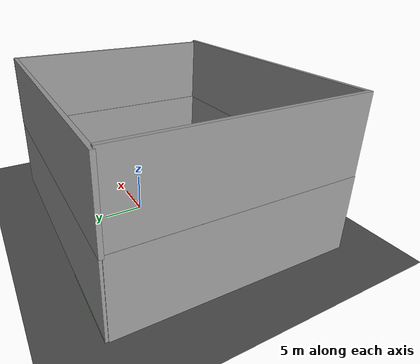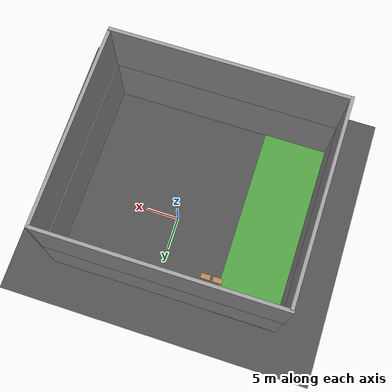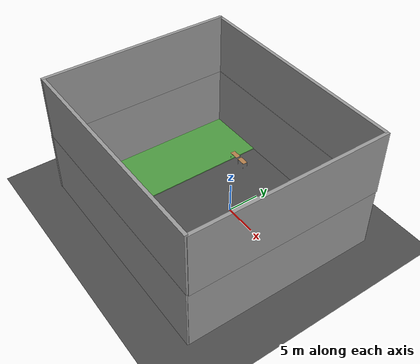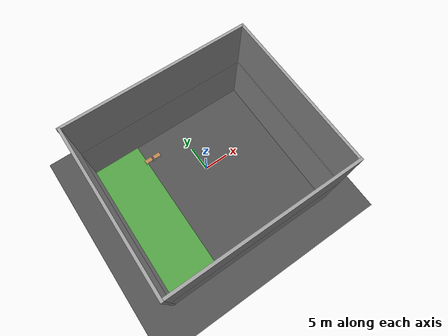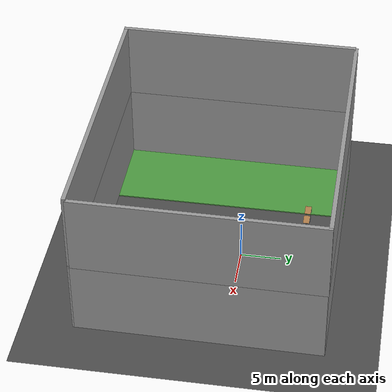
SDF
<sdf version="1.6">
 <world name="default">
  <model name="ground_plane">
   <static>1</static>
   <link name="link">
    <collision name="collision">
     <geometry><plane><normal>0 0 1</normal><size>40000 40000</size></plane></geometry>
     <surface>
      <contact><collide_bitmask>65535</collide_bitmask></contact>
      <friction><ode><mu>100</mu><mu2>50</mu2></ode></friction>
     </surface>
    </collision>
    <visual name="visual">
     <cast_shadows>0</cast_shadows>
     <geometry><plane><normal>0 0 1</normal><size>50 50</size></plane></geometry>
     <material>
      <script><uri>file://media/materials/scripts/gazebo.material</uri><name>Gazebo/Road</name></script>
     </material>
    </visual>
   </link>
  </model>
  <model name="grass_plane">
   <link name="link">
    <inertial>
     <mass>1</mass>
     <inertia><ixx>1</ixx><ixy>0</ixy><ixz>0</ixz><iyy>1</iyy><iyz>0</iyz><izz>1</izz></inertia>
    </inertial>
    <visual name="visual">
     <cast_shadows>0</cast_shadows>
     <geometry><box><size>10 30 0.2</size></box></geometry>
     <material>
      <script><uri>file://media/materials/scripts/gazebo.material</uri><name>Gazebo/Grass</name></script>
     </material>
    </visual>
    <collision name="collision">
     <geometry><box><size>10 30 0.2</size></box></geometry>
     <surface>
      <friction>
       <ode><mu>1</mu><mu2>1</mu2><fdir1>0 0 0</fdir1><slip1>0</slip1><slip2>0</slip2></ode>
       <torsional>
        <coefficient>1</coefficient>
        <patch_radius>0</patch_radius>
        <surface_radius>0</surface_radius>
        <use_patch_radius>1</use_patch_radius>
        <ode><slip>0</slip></ode>
       </torsional>
      </friction>
      <bounce><restitution_coefficient>0</restitution_coefficient><threshold>1e+06</threshold></bounce>
      <contact>
       <collide_without_contact>0</collide_without_contact>
       <collide_without_contact_bitmask>1</collide_without_contact_bitmask>
       <collide_bitmask>1</collide_bitmask>
       <ode>
        <soft_cfm>0</soft_cfm>
        <soft_erp>0.2</soft_erp>
        <kp>1e+13</kp>
        <kd>1</kd>
        <max_vel>0.01</max_vel>
        <min_depth>0</min_depth>
       </ode>
       <bullet>
        <split_impulse>1</split_impulse>
        <split_impulse_penetration_threshold>-0.01</split_impulse_penetration_threshold>
        <soft_cfm>0</soft_cfm>
        <soft_erp>0.2</soft_erp>
        <kp>1e+13</kp>
        <kd>1</kd>
       </bullet>
      </contact>
     </surface>
    </collision>
   </link>
   <static>1</static>
   <pose>-14.0993 -2.85316 0 0 -0 0</pose>
  </model>
  <model name="wall1">
   <link name="link">
    <enable_wind>1</enable_wind>
    <inertial>
     <mass>1</mass>
     <inertia><ixx>1</ixx><ixy>0</ixy><ixz>0</ixz><iyy>1</iyy><iyz>0</iyz><izz>1</izz></inertia>
    </inertial>
    <visual name="visual">
     <cast_shadows>0</cast_shadows>
     <geometry><box><size>35 0.5 10</size></box></geometry>
     <material>
      <script>
       <uri>model://grey_wall/materials/scripts</uri>
       <uri>model://grey_wall/materials/textures</uri>
       <name>vrc/grey_wall</name>
      </script>
      <shader type="pixel"><normal_map>__default__</normal_map></shader>
      <ambient>1 1 1 1</ambient>
      <diffuse>1 1 1 1</diffuse>
      <specular>0 0 0 1</specular>
      <emissive>0 0 0 1</emissive>
     </material>
    </visual>
    <collision name="collision">
     <geometry><box><size>35 0.5 10</size></box></geometry>
     <surface>
      <friction>
       <ode><mu>1</mu><mu2>1</mu2><fdir1>0 0 0</fdir1><slip1>0</slip1><slip2>0</slip2></ode>
       <torsional>
        <coefficient>1</coefficient>
        <patch_radius>0</patch_radius>
        <surface_radius>0</surface_radius>
        <use_patch_radius>1</use_patch_radius>
        <ode><slip>0</slip></ode>
       </torsional>
      </friction>
      <bounce><restitution_coefficient>0</restitution_coefficient><threshold>1e+06</threshold></bounce>
      <contact>
       <collide_without_contact>0</collide_without_contact>
       <collide_without_contact_bitmask>1</collide_without_contact_bitmask>
       <collide_bitmask>1</collide_bitmask>
       <ode>
        <soft_cfm>0</soft_cfm>
        <soft_erp>0.2</soft_erp>
        <kp>1e+13</kp>
        <kd>1</kd>
        <max_vel>0.01</max_vel>
        <min_depth>0</min_depth>
       </ode>
       <bullet>
        <split_impulse>1</split_impulse>
        <split_impulse_penetration_threshold>-0.01</split_impulse_penetration_threshold>
        <soft_cfm>0</soft_cfm>
        <soft_erp>0.2</soft_erp>
        <kp>1e+13</kp>
        <kd>1</kd>
       </bullet>
      </contact>
     </surface>
    </collision>
   </link>
   <static>1</static>
   <pose>-1.89732 -17.9183 5 0 -0 0</pose>
  </model>
  <model name="wall2">
   <link name="link">
    <enable_wind>1</enable_wind>
    <inertial>
     <mass>1</mass>
     <inertia><ixx>1</ixx><ixy>0</ixy><ixz>0</ixz><iyy>1</iyy><iyz>0</iyz><izz>1</izz></inertia>
    </inertial>
    <visual name="visual">
     <cast_shadows>0</cast_shadows>
     <geometry><box><size>30 0.5 10</size></box></geometry>
     <material>
      <script>
       <uri>model://grey_wall/materials/scripts</uri>
       <uri>model://grey_wall/materials/textures</uri>
       <name>vrc/grey_wall</name>
      </script>
      <shader type="pixel"><normal_map>__default__</normal_map></shader>
      <ambient>1 1 1 1</ambient>
      <diffuse>1 1 1 1</diffuse>
      <specular>0 0 0 1</specular>
      <emissive>0 0 0 1</emissive>
     </material>
    </visual>
    <collision name="collision">
     <geometry><box><size>30 0.5 10</size></box></geometry>
     <surface>
      <friction>
       <ode><mu>1</mu><mu2>1</mu2><fdir1>0 0 0</fdir1><slip1>0</slip1><slip2>0</slip2></ode>
       <torsional>
        <coefficient>1</coefficient>
        <patch_radius>0</patch_radius>
        <surface_radius>0</surface_radius>
        <use_patch_radius>1</use_patch_radius>
        <ode><slip>0</slip></ode>
       </torsional>
      </friction>
      <bounce><restitution_coefficient>0</restitution_coefficient><threshold>1e+06</threshold></bounce>
      <contact>
       <collide_without_contact>0</collide_without_contact>
       <collide_without_contact_bitmask>1</collide_without_contact_bitmask>
       <collide_bitmask>1</collide_bitmask>
       <ode>
        <soft_cfm>0</soft_cfm>
        <soft_erp>0.2</soft_erp>
        <kp>1e+13</kp>
        <kd>1</kd>
        <max_vel>0.01</max_vel>
        <min_depth>0</min_depth>
       </ode>
       <bullet>
        <split_impulse>1</split_impulse>
        <split_impulse_penetration_threshold>-0.01</split_impulse_penetration_threshold>
        <soft_cfm>0</soft_cfm>
        <soft_erp>0.2</soft_erp>
        <kp>1e+13</kp>
        <kd>1</kd>
       </bullet>
      </contact>
     </surface>
    </collision>
   </link>
   <static>1</static>
   <pose>15.5152 -2.93939 5 0 -0 1.56334</pose>
  </model>
  <model name="wall2_clone">
   <link name="link">
    <enable_wind>1</enable_wind>
    <inertial>
     <mass>1</mass>
     <inertia><ixx>1</ixx><ixy>0</ixy><ixz>0</ixz><iyy>1</iyy><iyz>0</iyz><izz>1</izz></inertia>
    </inertial>
    <visual name="visual">
     <cast_shadows>0</cast_shadows>
     <geometry><box><size>30 0.5 10</size></box></geometry>
     <material>
      <script>
       <uri>model://grey_wall/materials/scripts</uri>
       <uri>model://grey_wall/materials/textures</uri>
       <name>vrc/grey_wall</name>
      </script>
      <shader type="pixel"><normal_map>__default__</normal_map></shader>
      <ambient>1 1 1 1</ambient>
      <diffuse>1 1 1 1</diffuse>
      <specular>0 0 0 1</specular>
      <emissive>0 0 0 1</emissive>
     </material>
    </visual>
    <collision name="collision">
     <geometry><box><size>30 0.5 10</size></box></geometry>
     <surface>
      <friction>
       <ode><mu>1</mu><mu2>1</mu2><fdir1>0 0 0</fdir1><slip1>0</slip1><slip2>0</slip2></ode>
       <torsional>
        <coefficient>1</coefficient>
        <patch_radius>0</patch_radius>
        <surface_radius>0</surface_radius>
        <use_patch_radius>1</use_patch_radius>
        <ode><slip>0</slip></ode>
       </torsional>
      </friction>
      <bounce><restitution_coefficient>0</restitution_coefficient><threshold>1e+06</threshold></bounce>
      <contact>
       <collide_without_contact>0</collide_without_contact>
       <collide_without_contact_bitmask>1</collide_without_contact_bitmask>
       <collide_bitmask>1</collide_bitmask>
       <ode>
        <soft_cfm>0</soft_cfm>
        <soft_erp>0.2</soft_erp>
        <kp>1e+13</kp>
        <kd>1</kd>
        <max_vel>0.01</max_vel>
        <min_depth>0</min_depth>
       </ode>
       <bullet>
        <split_impulse>1</split_impulse>
        <split_impulse_penetration_threshold>-0.01</split_impulse_penetration_threshold>
        <soft_cfm>0</soft_cfm>
        <soft_erp>0.2</soft_erp>
        <kp>1e+13</kp>
        <kd>1</kd>
       </bullet>
      </contact>
     </surface>
    </collision>
   </link>
   <static>1</static>
   <pose>-19.1022 -3.20511 5 0 -0 1.56334</pose>
  </model>
  <model name="wall1_clone">
   <link name="link">
    <enable_wind>1</enable_wind>
    <inertial>
     <mass>1</mass>
     <inertia><ixx>1</ixx><ixy>0</ixy><ixz>0</ixz><iyy>1</iyy><iyz>0</iyz><izz>1</izz></inertia>
    </inertial>
    <visual name="visual">
     <cast_shadows>0</cast_shadows>
     <geometry><box><size>35 0.5 10</size></box></geometry>
     <material>
      <script>
       <uri>model://grey_wall/materials/scripts</uri>
       <uri>model://grey_wall/materials/textures</uri>
       <name>vrc/grey_wall</name>
      </script>
      <shader type="pixel"><normal_map>__default__</normal_map></shader>
      <ambient>1 1 1 1</ambient>
      <diffuse>1 1 1 1</diffuse>
      <specular>0 0 0 1</specular>
      <emissive>0 0 0 1</emissive>
     </material>
    </visual>
    <collision name="collision">
     <geometry><box><size>35 0.5 10</size></box></geometry>
     <surface>
      <friction>
       <ode><mu>1</mu><mu2>1</mu2><fdir1>0 0 0</fdir1><slip1>0</slip1><slip2>0</slip2></ode>
       <torsional>
        <coefficient>1</coefficient>
        <patch_radius>0</patch_radius>
        <surface_radius>0</surface_radius>
        <use_patch_radius>1</use_patch_radius>
        <ode><slip>0</slip></ode>
       </torsional>
      </friction>
      <bounce><restitution_coefficient>0</restitution_coefficient><threshold>1e+06</threshold></bounce>
      <contact>
       <collide_without_contact>0</collide_without_contact>
       <collide_without_contact_bitmask>1</collide_without_contact_bitmask>
       <collide_bitmask>1</collide_bitmask>
       <ode>
        <soft_cfm>0</soft_cfm>
        <soft_erp>0.2</soft_erp>
        <kp>1e+13</kp>
        <kd>1</kd>
        <max_vel>0.01</max_vel>
        <min_depth>0</min_depth>
       </ode>
       <bullet>
        <split_impulse>1</split_impulse>
        <split_impulse_penetration_threshold>-0.01</split_impulse_penetration_threshold>
        <soft_cfm>0</soft_cfm>
        <soft_erp>0.2</soft_erp>
        <kp>1e+13</kp>
        <kd>1</kd>
       </bullet>
      </contact>
     </surface>
    </collision>
   </link>
   <static>1</static>
   <pose>-1.64175 11.8744 5 0 -0 0</pose>
  </model>
  <model name="tree0">
   <pose>-11.5 1 0 0 -0 0</pose>
   <scale>1 1 1</scale>
   <link name="tree_base">
    <pose>-11.5 1 0 0 -0 0</pose>
    <velocity>0 0 0 0 -0 0</velocity>
    <acceleration>0 0 0 0 -0 0</acceleration>
    <wrench>0 0 0 0 -0 0</wrench>
   </link>
  </model>
  <model name="table">
   <static>1</static>
   <link name="link">
    <collision name="surface">
     <pose>0 0 1 0 -0 0</pose>
     <geometry><box><size>1.5 0.8 0.03</size></box></geometry>
     <surface><friction><ode><mu>0.6</mu><mu2>0.6</mu2></ode></friction></surface>
    </collision>
    <visual name="visual1">
     <pose>0 0 1 0 -0 0</pose>
     <geometry><box><size>1.5 0.8 0.03</size></box></geometry>
     <material>
      <script><uri>file://media/materials/scripts/gazebo.material</uri><name>Gazebo/Wood</name></script>
     </material>
    </visual>
    <collision name="front_left_leg">
     <pose>0.68 0.38 0.5 0 -0 0</pose>
     <geometry><cylinder><radius>0.02</radius><length>1</length></cylinder></geometry>
    </collision>
    <visual name="front_left_leg">
     <pose>0.68 0.38 0.5 0 -0 0</pose>
     <geometry><cylinder><radius>0.02</radius><length>1</length></cylinder></geometry>
     <material>
      <script><uri>file://media/materials/scripts/gazebo.material</uri><name>Gazebo/Grey</name></script>
     </material>
    </visual>
    <collision name="front_right_leg">
     <pose>0.68 -0.38 0.5 0 -0 0</pose>
     <geometry><cylinder><radius>0.02</radius><length>1</length></cylinder></geometry>
    </collision>
    <visual name="front_right_leg">
     <pose>0.68 -0.38 0.5 0 -0 0</pose>
     <geometry><cylinder><radius>0.02</radius><length>1</length></cylinder></geometry>
     <material>
      <script><uri>file://media/materials/scripts/gazebo.material</uri><name>Gazebo/Grey</name></script>
     </material>
    </visual>
    <collision name="back_right_leg">
     <pose>-0.68 -0.38 0.5 0 -0 0</pose>
     <geometry><cylinder><radius>0.02</radius><length>1</length></cylinder></geometry>
    </collision>
    <visual name="back_right_leg">
     <pose>-0.68 -0.38 0.5 0 -0 0</pose>
     <geometry><cylinder><radius>0.02</radius><length>1</length></cylinder></geometry>
     <material>
      <script><uri>file://media/materials/scripts/gazebo.material</uri><name>Gazebo/Grey</name></script>
     </material>
    </visual>
    <collision name="back_left_leg">
     <pose>-0.68 0.38 0.5 0 -0 0</pose>
     <geometry><cylinder><radius>0.02</radius><length>1</length></cylinder></geometry>
    </collision>
    <visual name="back_left_leg">
     <pose>-0.68 0.38 0.5 0 -0 0</pose>
     <geometry><cylinder><radius>0.02</radius><length>1</length></cylinder></geometry>
     <material>
      <script><uri>file://media/materials/scripts/gazebo.material</uri><name>Gazebo/Grey</name></script>
     </material>
    </visual>
   </link>
   <pose>-6.87951 7.56953 0 0 -0 0</pose>
  </model>
  <model name="table_0">
   <static>1</static>
   <link name="link">
    <collision name="surface">
     <pose>0 0 1 0 -0 0</pose>
     <geometry><box><size>1.5 0.8 0.03</size></box></geometry>
     <surface><friction><ode><mu>0.6</mu><mu2>0.6</mu2></ode></friction></surface>
    </collision>
    <visual name="visual1">
     <pose>0 0 1 0 -0 0</pose>
     <geometry><box><size>1.5 0.8 0.03</size></box></geometry>
     <material>
      <script><uri>file://media/materials/scripts/gazebo.material</uri><name>Gazebo/Wood</name></script>
     </material>
    </visual>
    <collision name="front_left_leg">
     <pose>0.68 0.38 0.5 0 -0 0</pose>
     <geometry><cylinder><radius>0.02</radius><length>1</length></cylinder></geometry>
    </collision>
    <visual name="front_left_leg">
     <pose>0.68 0.38 0.5 0 -0 0</pose>
     <geometry><cylinder><radius>0.02</radius><length>1</length></cylinder></geometry>
     <material>
      <script><uri>file://media/materials/scripts/gazebo.material</uri><name>Gazebo/Grey</name></script>
     </material>
    </visual>
    <collision name="front_right_leg">
     <pose>0.68 -0.38 0.5 0 -0 0</pose>
     <geometry><cylinder><radius>0.02</radius><length>1</length></cylinder></geometry>
    </collision>
    <visual name="front_right_leg">
     <pose>0.68 -0.38 0.5 0 -0 0</pose>
     <geometry><cylinder><radius>0.02</radius><length>1</length></cylinder></geometry>
     <material>
      <script><uri>file://media/materials/scripts/gazebo.material</uri><name>Gazebo/Grey</name></script>
     </material>
    </visual>
    <collision name="back_right_leg">
     <pose>-0.68 -0.38 0.5 0 -0 0</pose>
     <geometry><cylinder><radius>0.02</radius><length>1</length></cylinder></geometry>
    </collision>
    <visual name="back_right_leg">
     <pose>-0.68 -0.38 0.5 0 -0 0</pose>
     <geometry><cylinder><radius>0.02</radius><length>1</length></cylinder></geometry>
     <material>
      <script><uri>file://media/materials/scripts/gazebo.material</uri><name>Gazebo/Grey</name></script>
     </material>
    </visual>
    <collision name="back_left_leg">
     <pose>-0.68 0.38 0.5 0 -0 0</pose>
     <geometry><cylinder><radius>0.02</radius><length>1</length></cylinder></geometry>
    </collision>
    <visual name="back_left_leg">
     <pose>-0.68 0.38 0.5 0 -0 0</pose>
     <geometry><cylinder><radius>0.02</radius><length>1</length></cylinder></geometry>
     <material>
      <script><uri>file://media/materials/scripts/gazebo.material</uri><name>Gazebo/Grey</name></script>
     </material>
    </visual>
   </link>
   <pose>-8.73996 7.5834 0 0 -0 0</pose>
  </model>
  <model name="wall1_clone_clone">
   <link name="link">
    <enable_wind>1</enable_wind>
    <inertial>
     <mass>1</mass>
     <inertia><ixx>1</ixx><ixy>0</ixy><ixz>0</ixz><iyy>1</iyy><iyz>0</iyz><izz>1</izz></inertia>
    </inertial>
    <visual name="visual">
     <cast_shadows>0</cast_shadows>
     <geometry><box><size>35 0.5 10</size></box></geometry>
     <material>
      <script>
       <uri>model://grey_wall/materials/scripts</uri>
       <uri>model://grey_wall/materials/textures</uri>
       <name>vrc/grey_wall</name>
      </script>
      <shader type="pixel"><normal_map>__default__</normal_map></shader>
      <ambient>1 1 1 1</ambient>
      <diffuse>1 1 1 1</diffuse>
      <specular>0 0 0 1</specular>
      <emissive>0 0 0 1</emissive>
     </material>
    </visual>
    <collision name="collision">
     <geometry><box><size>35 0.5 10</size></box></geometry>
     <surface>
      <friction>
       <ode><mu>1</mu><mu2>1</mu2><fdir1>0 0 0</fdir1><slip1>0</slip1><slip2>0</slip2></ode>
       <torsional>
        <coefficient>1</coefficient>
        <patch_radius>0</patch_radius>
        <surface_radius>0</surface_radius>
        <use_patch_radius>1</use_patch_radius>
        <ode><slip>0</slip></ode>
       </torsional>
      </friction>
      <bounce><restitution_coefficient>0</restitution_coefficient><threshold>1e+06</threshold></bounce>
      <contact>
       <collide_without_contact>0</collide_without_contact>
       <collide_without_contact_bitmask>1</collide_without_contact_bitmask>
       <collide_bitmask>1</collide_bitmask>
       <ode>
        <soft_cfm>0</soft_cfm>
        <soft_erp>0.2</soft_erp>
        <kp>1e+13</kp>
        <kd>1</kd>
        <max_vel>0.01</max_vel>
        <min_depth>0</min_depth>
       </ode>
       <bullet>
        <split_impulse>1</split_impulse>
        <split_impulse_penetration_threshold>-0.01</split_impulse_penetration_threshold>
        <soft_cfm>0</soft_cfm>
        <soft_erp>0.2</soft_erp>
        <kp>1e+13</kp>
        <kd>1</kd>
       </bullet>
      </contact>
     </surface>
    </collision>
   </link>
   <static>1</static>
   <pose>-1.83498 11.9098 14.7109 0 -0 0</pose>
  </model>
  <model name="wall1_clone_clone_0">
   <link name="link">
    <enable_wind>1</enable_wind>
    <inertial>
     <mass>1</mass>
     <inertia><ixx>1</ixx><ixy>0</ixy><ixz>0</ixz><iyy>1</iyy><iyz>0</iyz><izz>1</izz></inertia>
    </inertial>
    <visual name="visual">
     <cast_shadows>0</cast_shadows>
     <geometry><box><size>35 0.5 10</size></box></geometry>
     <material>
      <script>
       <uri>model://grey_wall/materials/scripts</uri>
       <uri>model://grey_wall/materials/textures</uri>
       <name>vrc/grey_wall</name>
      </script>
      <shader type="pixel"><normal_map>__default__</normal_map></shader>
      <ambient>1 1 1 1</ambient>
      <diffuse>1 1 1 1</diffuse>
      <specular>0 0 0 1</specular>
      <emissive>0 0 0 1</emissive>
     </material>
    </visual>
    <collision name="collision">
     <geometry><box><size>35 0.5 10</size></box></geometry>
     <surface>
      <friction>
       <ode><mu>1</mu><mu2>1</mu2><fdir1>0 0 0</fdir1><slip1>0</slip1><slip2>0</slip2></ode>
       <torsional>
        <coefficient>1</coefficient>
        <patch_radius>0</patch_radius>
        <surface_radius>0</surface_radius>
        <use_patch_radius>1</use_patch_radius>
        <ode><slip>0</slip></ode>
       </torsional>
      </friction>
      <bounce><restitution_coefficient>0</restitution_coefficient><threshold>1e+06</threshold></bounce>
      <contact>
       <collide_without_contact>0</collide_without_contact>
       <collide_without_contact_bitmask>1</collide_without_contact_bitmask>
       <collide_bitmask>1</collide_bitmask>
       <ode>
        <soft_cfm>0</soft_cfm>
        <soft_erp>0.2</soft_erp>
        <kp>1e+13</kp>
        <kd>1</kd>
        <max_vel>0.01</max_vel>
        <min_depth>0</min_depth>
       </ode>
       <bullet>
        <split_impulse>1</split_impulse>
        <split_impulse_penetration_threshold>-0.01</split_impulse_penetration_threshold>
        <soft_cfm>0</soft_cfm>
        <soft_erp>0.2</soft_erp>
        <kp>1e+13</kp>
        <kd>1</kd>
       </bullet>
      </contact>
     </surface>
    </collision>
   </link>
   <static>1</static>
   <pose>-1.82946 -17.9039 14.9391 0 -0 0</pose>
  </model>
  <model name="wall2_clone_0">
   <link name="link">
    <enable_wind>1</enable_wind>
    <inertial>
     <mass>1</mass>
     <inertia><ixx>1</ixx><ixy>0</ixy><ixz>0</ixz><iyy>1</iyy><iyz>0</iyz><izz>1</izz></inertia>
    </inertial>
    <visual name="visual">
     <cast_shadows>0</cast_shadows>
     <geometry><box><size>30 0.5 10</size></box></geometry>
     <material>
      <script>
       <uri>model://grey_wall/materials/scripts</uri>
       <uri>model://grey_wall/materials/textures</uri>
       <name>vrc/grey_wall</name>
      </script>
      <shader type="pixel"><normal_map>__default__</normal_map></shader>
      <ambient>1 1 1 1</ambient>
      <diffuse>1 1 1 1</diffuse>
      <specular>0 0 0 1</specular>
      <emissive>0 0 0 1</emissive>
     </material>
    </visual>
    <collision name="collision">
     <geometry><box><size>30 0.5 10</size></box></geometry>
     <surface>
      <friction>
       <ode><mu>1</mu><mu2>1</mu2><fdir1>0 0 0</fdir1><slip1>0</slip1><slip2>0</slip2></ode>
       <torsional>
        <coefficient>1</coefficient>
        <patch_radius>0</patch_radius>
        <surface_radius>0</surface_radius>
        <use_patch_radius>1</use_patch_radius>
        <ode><slip>0</slip></ode>
       </torsional>
      </friction>
      <bounce><restitution_coefficient>0</restitution_coefficient><threshold>1e+06</threshold></bounce>
      <contact>
       <collide_without_contact>0</collide_without_contact>
       <collide_without_contact_bitmask>1</collide_without_contact_bitmask>
       <collide_bitmask>1</collide_bitmask>
       <ode>
        <soft_cfm>0</soft_cfm>
        <soft_erp>0.2</soft_erp>
        <kp>1e+13</kp>
        <kd>1</kd>
        <max_vel>0.01</max_vel>
        <min_depth>0</min_depth>
       </ode>
       <bullet>
        <split_impulse>1</split_impulse>
        <split_impulse_penetration_threshold>-0.01</split_impulse_penetration_threshold>
        <soft_cfm>0</soft_cfm>
        <soft_erp>0.2</soft_erp>
        <kp>1e+13</kp>
        <kd>1</kd>
       </bullet>
      </contact>
     </surface>
    </collision>
   </link>
   <static>1</static>
   <pose>15.6182 -2.86069 14.7068 0 -0 1.56334</pose>
  </model>
  <model name="wall2_clone_clone">
   <link name="link">
    <enable_wind>1</enable_wind>
    <inertial>
     <mass>1</mass>
     <inertia><ixx>1</ixx><ixy>0</ixy><ixz>0</ixz><iyy>1</iyy><iyz>0</iyz><izz>1</izz></inertia>
    </inertial>
    <visual name="visual">
     <cast_shadows>0</cast_shadows>
     <geometry><box><size>30 0.5 10</size></box></geometry>
     <material>
      <script>
       <uri>model://grey_wall/materials/scripts</uri>
       <uri>model://grey_wall/materials/textures</uri>
       <name>vrc/grey_wall</name>
      </script>
      <shader type="pixel"><normal_map>__default__</normal_map></shader>
      <ambient>1 1 1 1</ambient>
      <diffuse>1 1 1 1</diffuse>
      <specular>0 0 0 1</specular>
      <emissive>0 0 0 1</emissive>
     </material>
    </visual>
    <collision name="collision">
     <geometry><box><size>30 0.5 10</size></box></geometry>
     <surface>
      <friction>
       <ode><mu>1</mu><mu2>1</mu2><fdir1>0 0 0</fdir1><slip1>0</slip1><slip2>0</slip2></ode>
       <torsional>
        <coefficient>1</coefficient>
        <patch_radius>0</patch_radius>
        <surface_radius>0</surface_radius>
        <use_patch_radius>1</use_patch_radius>
        <ode><slip>0</slip></ode>
       </torsional>
      </friction>
      <bounce><restitution_coefficient>0</restitution_coefficient><threshold>1e+06</threshold></bounce>
      <contact>
       <collide_without_contact>0</collide_without_contact>
       <collide_without_contact_bitmask>1</collide_without_contact_bitmask>
       <collide_bitmask>1</collide_bitmask>
       <ode>
        <soft_cfm>0</soft_cfm>
        <soft_erp>0.2</soft_erp>
        <kp>1e+13</kp>
        <kd>1</kd>
        <max_vel>0.01</max_vel>
        <min_depth>0</min_depth>
       </ode>
       <bullet>
        <split_impulse>1</split_impulse>
        <split_impulse_penetration_threshold>-0.01</split_impulse_penetration_threshold>
        <soft_cfm>0</soft_cfm>
        <soft_erp>0.2</soft_erp>
        <kp>1e+13</kp>
        <kd>1</kd>
       </bullet>
      </contact>
     </surface>
    </collision>
   </link>
   <static>1</static>
   <pose>-19.0766 -3.17047 14.9475 0 -0 1.56334</pose>
  </model>
 </world>
</sdf>
